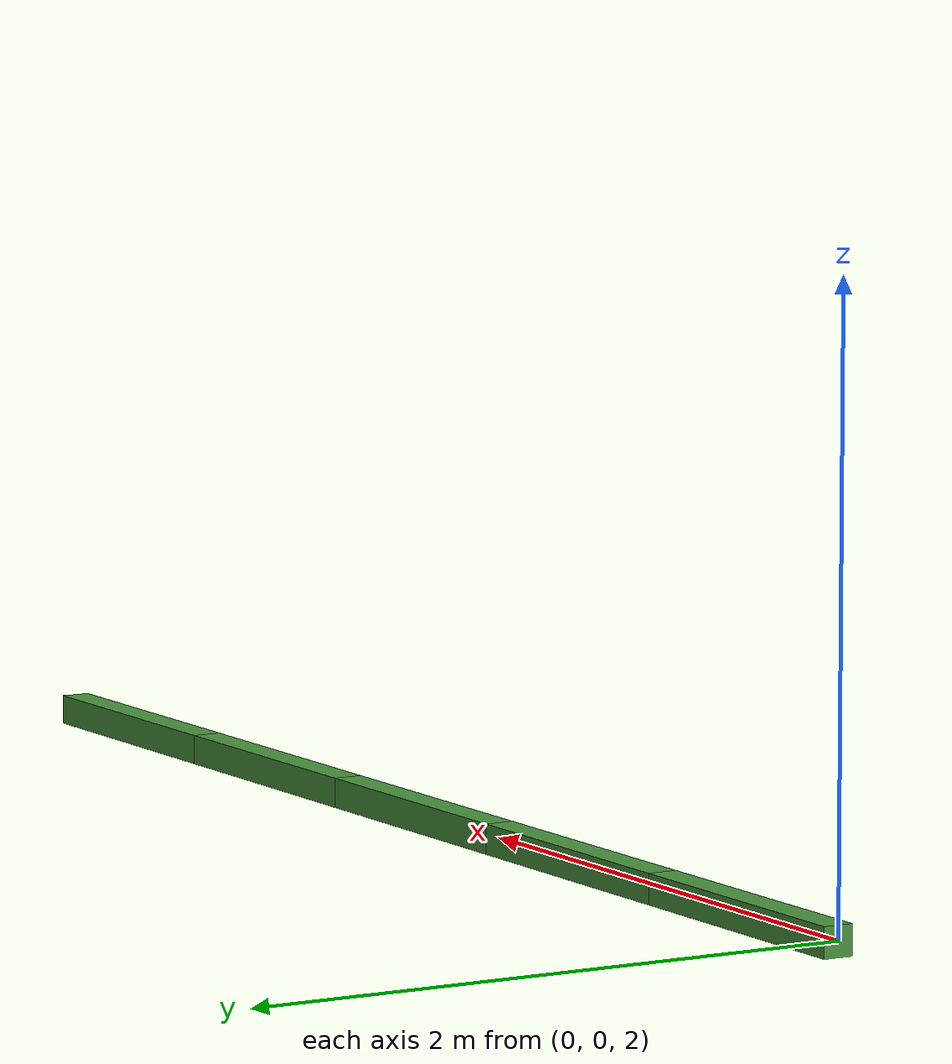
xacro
<?xml version="1.0"?>
<robot name="continuous_chain"
       xmlns:xi="http://www.w3.org/2001/XInclude"
       xmlns:gazebo="http://playerstage.sourceforge.net/gazebo/xmlschema/#gz"
       xmlns:model="http://playerstage.sourceforge.net/gazebo/xmlschema/#model"
       xmlns:sensor="http://playerstage.sourceforge.net/gazebo/xmlschema/#sensor"
       xmlns:body="http://playerstage.sourceforge.net/gazebo/xmlschema/#body"
       xmlns:geom="http://playerstage.sourceforge.net/gazebo/xmlschema/#geom"
       xmlns:joint="http://playerstage.sourceforge.net/gazebo/xmlschema/#joint"
       xmlns:interface="http://playerstage.sourceforge.net/gazebo/xmlschema/#interface"
       xmlns:rendering="http://playerstage.sourceforge.net/gazebo/xmlschema/#rendering"
       xmlns:renderable="http://playerstage.sourceforge.net/gazebo/xmlschema/#renderable"
       xmlns:controller="http://playerstage.sourceforge.net/gazebo/xmlschema/#controller"
       xmlns:physics="http://playerstage.sourceforge.net/gazebo/xmlschema/#physics">

  <link name="world" />

  <joint name="joint_1" type="continuous" >
    <axis xyz="0 0 1" />
    <origin xyz="0 0 2" rpy="0 0 0" />
    <parent link="world" />
    <child link="link_1" />
    <dynamics damping="0.0" />
  </joint>
  <link name="link_1">
    <inertial>
      <mass value="1" />
      <origin xyz="1 0 0" />
      <inertia  ixx="0" ixy="0" ixz="0" iyy="0" iyz="0" izz="0" />
    </inertial>
    <visual>
      <origin xyz="0.5 0 0" rpy="0 0 0" />
      <geometry>
        <box size="1.0 0.1 0.1" />
      </geometry>
    </visual>
    <collision>
      <origin xyz="0.5 0 0" rpy="0 0 0" />
      <geometry>
        <box size="1.0 0.1 0.1" />
      </geometry>
    </collision>
  </link>
  <gazebo reference="link_1">
    <material>Gazebo/GrassFloor</material>
    <turnGravityOff>true</turnGravityOff>
  </gazebo>
  <transmission type="pr2_mechanism_model/SimpleTransmission" name="link_1_trans">
    <actuator name="link_1_motor" />
    <joint name="joint_1" />
    <mechanicalReduction>1</mechanicalReduction>
    <motorTorqueConstant>1</motorTorqueConstant>
  </transmission>

  <joint name="joint_2" type="continuous" >
    <axis xyz="0 0 1" />
    <origin xyz="1 0 0" rpy="0 0 0" />
    <parent link="link_1" />
    <child link="link_2" />
    <dynamics damping="0.0" />
  </joint>
  <link name="link_2">
    <inertial>
      <mass value="1" />
      <origin xyz="1 0 0" />
      <inertia  ixx="0" ixy="0" ixz="0" iyy="0" iyz="0" izz="0" />
    </inertial>
    <visual>
      <origin xyz="0.5 0 0" rpy="0 0 0" />
      <geometry>
        <box size="1.0 0.1 0.1" />
      </geometry>
    </visual>
    <collision>
      <origin xyz="0.5 0 0" rpy="0 0 0" />
      <geometry>
        <box size="1.0 0.1 0.1" />
      </geometry>
    </collision>
  </link>
  <gazebo reference="link_2">
    <material>Gazebo/GrassFloor</material>
    <turnGravityOff>true</turnGravityOff>
  </gazebo>
  <transmission type="pr2_mechanism_model/SimpleTransmission" name="link_2_trans">
    <actuator name="link_2_motor" />
    <joint name="joint_2" />
    <mechanicalReduction>1</mechanicalReduction>
    <motorTorqueConstant>1</motorTorqueConstant>
  </transmission>

  <joint name="joint_3" type="continuous" >
    <axis xyz="0 0 1" />
    <origin xyz="1 0 0" rpy="0 0 0" />
    <parent link="link_2" />
    <child link="link_3" />
    <dynamics damping="0.0" />
  </joint>
  <link name="link_3">
    <inertial>
      <mass value="1" />
      <origin xyz="1 0 0" />
      <inertia  ixx="0" ixy="0" ixz="0" iyy="0" iyz="0" izz="0" />
    </inertial>
    <visual>
      <origin xyz="0.5 0 0" rpy="0 0 0" />
      <geometry>
        <box size="1.0 0.1 0.1" />
      </geometry>
    </visual>
    <collision>
      <origin xyz="0.5 0 0" rpy="0 0 0" />
      <geometry>
        <box size="1.0 0.1 0.1" />
      </geometry>
    </collision>
  </link>
  <gazebo reference="link_3">
    <material>Gazebo/GrassFloor</material>
    <turnGravityOff>true</turnGravityOff>
  </gazebo>
  <transmission type="pr2_mechanism_model/SimpleTransmission" name="link_3_trans">
    <actuator name="link_3_motor" />
    <joint name="joint_3" />
    <mechanicalReduction>1</mechanicalReduction>
    <motorTorqueConstant>1</motorTorqueConstant>
  </transmission>

  <joint name="joint_4" type="continuous" >
    <axis xyz="0 0 1" />
    <origin xyz="1 0 0" rpy="0 0 0" />
    <parent link="link_3" />
    <child link="link_4" />
    <dynamics damping="0.0" />
  </joint>
  <link name="link_4">
    <inertial>
      <mass value="1" />
      <origin xyz="1 0 0" />
      <inertia  ixx="0" ixy="0" ixz="0" iyy="0" iyz="0" izz="0" />
    </inertial>
    <visual>
      <origin xyz="0.5 0 0" rpy="0 0 0" />
      <geometry>
        <box size="1.0 0.1 0.1" />
      </geometry>
    </visual>
    <collision>
      <origin xyz="0.5 0 0" rpy="0 0 0" />
      <geometry>
        <box size="1.0 0.1 0.1" />
      </geometry>
    </collision>
  </link>
  <gazebo reference="link_4">
    <material>Gazebo/GrassFloor</material>
    <turnGravityOff>true</turnGravityOff>
  </gazebo>
  <transmission type="pr2_mechanism_model/SimpleTransmission" name="link_4_trans">
    <actuator name="link_4_motor" />
    <joint name="joint_4" />
    <mechanicalReduction>1</mechanicalReduction>
    <motorTorqueConstant>1</motorTorqueConstant>
  </transmission>

  <joint name="joint_5" type="continuous" >
    <axis xyz="0 0 1" />
    <origin xyz="1 0 0" rpy="0 0 0" />
    <parent link="link_4" />
    <child link="link_5" />
    <dynamics damping="0.0" />
  </joint>
  <link name="link_5">
    <inertial>
      <mass value="1" />
      <origin xyz="1 0 0" />
      <inertia  ixx="0" ixy="0" ixz="0" iyy="0" iyz="0" izz="0" />
    </inertial>
    <visual>
      <origin xyz="0.5 0 0" rpy="0 0 0" />
      <geometry>
        <box size="1.0 0.1 0.1" />
      </geometry>
    </visual>
    <collision>
      <origin xyz="0.5 0 0" rpy="0 0 0" />
      <geometry>
        <box size="1.0 0.1 0.1" />
      </geometry>
    </collision>
  </link>
  <gazebo reference="link_5">
    <material>Gazebo/GrassFloor</material>
    <turnGravityOff>true</turnGravityOff>
  </gazebo>
  <transmission type="pr2_mechanism_model/SimpleTransmission" name="link_5_trans">
    <actuator name="link_5_motor" />
    <joint name="joint_5" />
    <mechanicalReduction>1</mechanicalReduction>
    <motorTorqueConstant>1</motorTorqueConstant>
  </transmission>

  <!-- controller manager integration -->

  <gazebo>
      <!-- PR2_ACTARRAY -->
      <controller:gazebo_ros_controller_manager name="gazebo_ros_controller_manager" plugin="libgazebo_ros_controller_manager.so">
        <alwaysOn>true</alwaysOn>
        <updateRate>1000.0</updateRate>
        <interface:audio name="gazebo_ros_controller_manager_dummy_iface" />
      </controller:gazebo_ros_controller_manager>

      <!-- gazebo_ros_p3d for position groundtruth -->
      <controller:gazebo_ros_p3d name="p3d_link_controller" plugin="libgazebo_ros_p3d.so">
          <alwaysOn>true</alwaysOn>
          <updateRate>100.0</updateRate>
          <bodyName>link_1</bodyName>
          <topicName>link_1_pose</topicName>
          <frameName>map</frameName>
          <interface:position name="p3d_link_position"/>
      </controller:gazebo_ros_p3d>
  </gazebo>

</robot>
